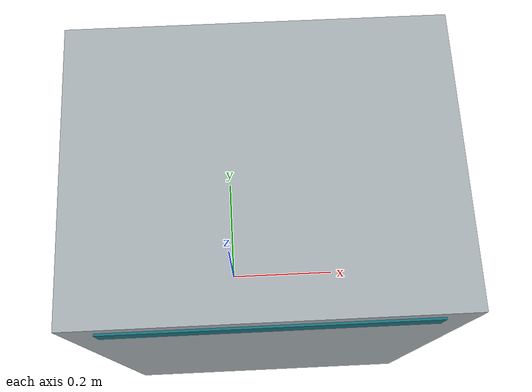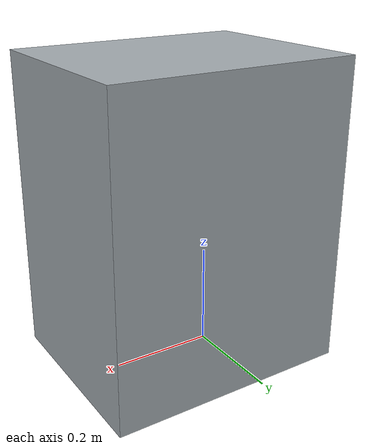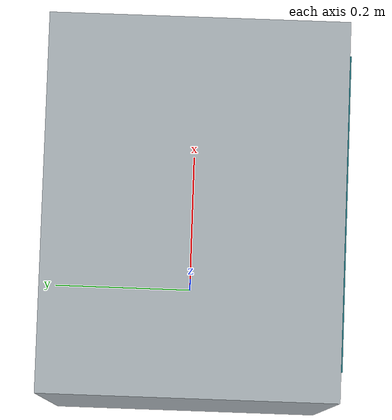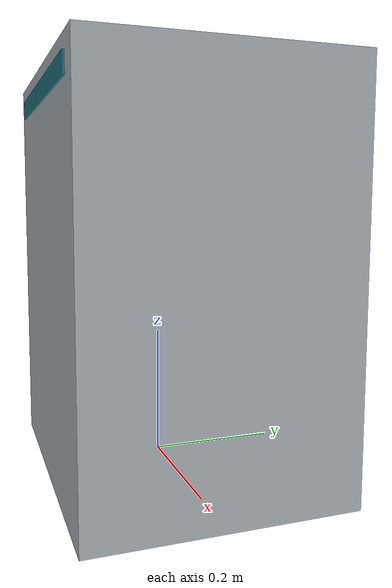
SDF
<?xml version="1.0"?>
<sdf version="1.8">
  <model name="high_plinth">
    <static>true</static>
    <link name="plinth">
      <!-- One 600 mm tall platform replaces the earlier two-step geometry.
           Its smaller footprint leaves room for the mobile base to approach. -->
      <collision name="platform_collision">
        <pose>0.06 0 0.30 0 0 0</pose>
        <geometry><box><size>0.48 0.38 0.60</size></box></geometry>
      </collision>
      <visual name="platform_visual">
        <pose>0.06 0 0.30 0 0 0</pose>
        <geometry><box><size>0.48 0.38 0.60</size></box></geometry>
        <material>
          <ambient>0.52 0.55 0.57 1</ambient>
          <diffuse>0.64 0.67 0.69 1</diffuse>
          <roughness><metal><roughness>0.70</roughness><metalness>0.02</metalness></metal></roughness>
        </material>
      </visual>
      <visual name="accent_strip">
        <pose>0.06 -0.191 0.565 0 0 0</pose>
        <geometry><box><size>0.40 0.004 0.028</size></box></geometry>
        <material><ambient>0.08 0.31 0.35 1</ambient><diffuse>0.10 0.43 0.47 1</diffuse></material>
      </visual>
    </link>
  </model>
</sdf>
